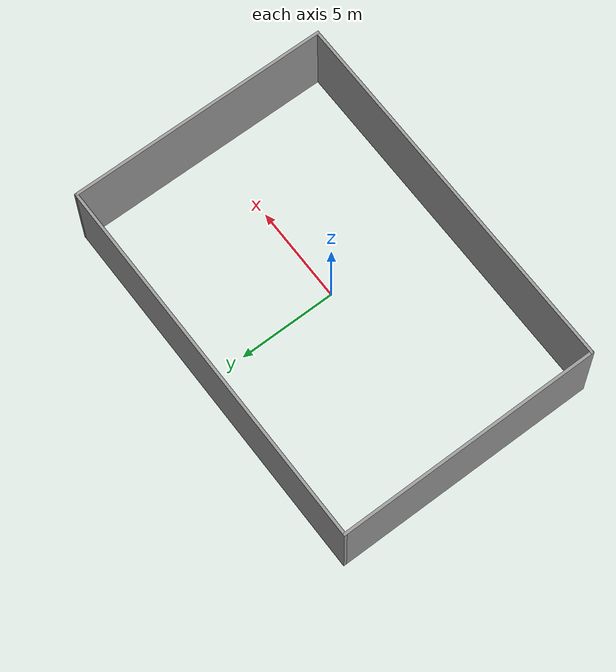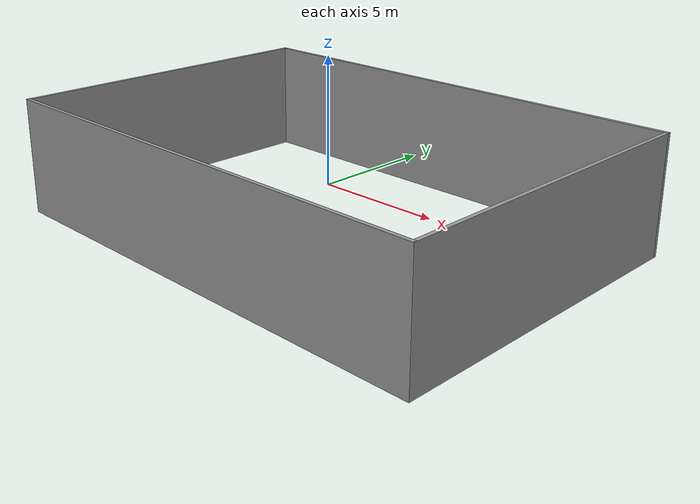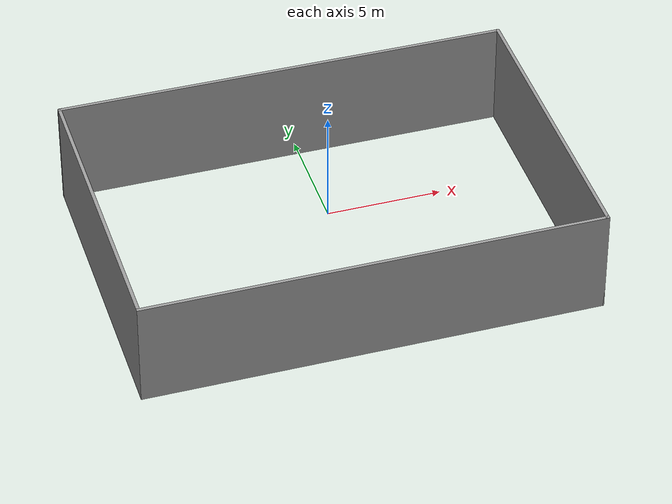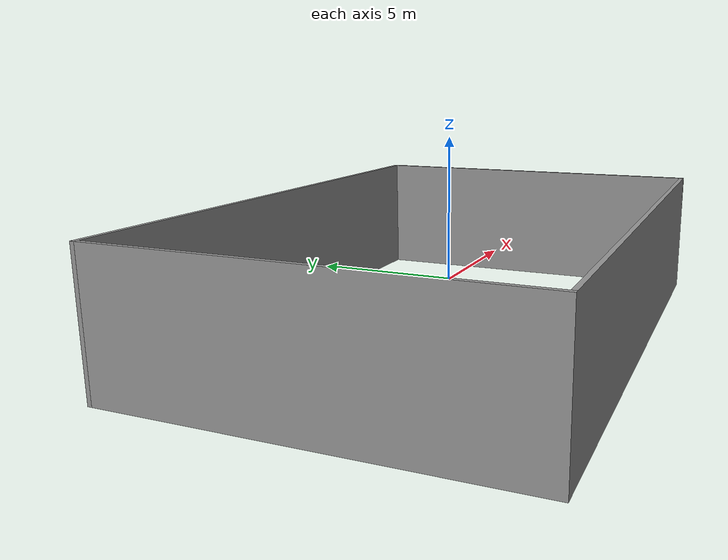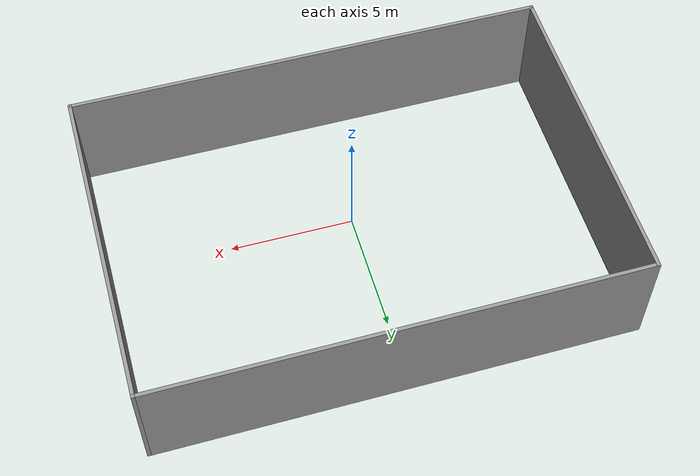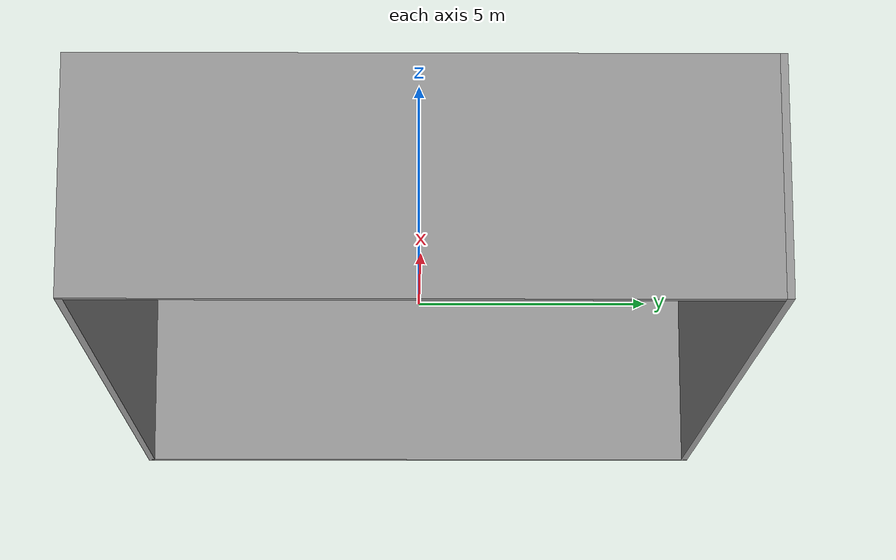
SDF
<?xml version='1.0'?>
<sdf version='1.7'>
  <model name='warehouse_outer_wall'>
    <pose>0.016054 0.050121 -0.875 0 -0 0</pose>
    <link name='Wall_0'>
      <collision name='Wall_0_Collision'>
        <geometry>
          <box>
            <size>13.75 0.15 4.75</size>
          </box>
        </geometry>
        <pose>0 0 1.25 0 -0 0</pose>
      </collision>
      <visual name='Wall_0_Visual'>
        <pose>0 0 1.25 0 -0 0</pose>
        <geometry>
          <box>
            <size>13.75 0.15 4.75</size>
          </box>
        </geometry>
        <material>
          <script>
            <uri>file://media/materials/scripts/gazebo.material</uri>
            <name>Gazebo/Grey</name>
          </script>
          <ambient>1 1 1 1</ambient>
        </material>
        <meta>
          <layer>0</layer>
        </meta>
      </visual>
      <pose>-9.925 -0.011258 0 0 -0 -1.5708</pose>
    </link>
    <link name='Wall_1'>
      <collision name='Wall_1_Collision'>
        <geometry>
          <box>
            <size>20 0.15 4.75</size>
          </box>
        </geometry>
        <pose>0 0 1.25 0 -0 0</pose>
      </collision>
      <visual name='Wall_1_Visual'>
        <pose>0 0 1.25 0 -0 0</pose>
        <geometry>
          <box>
            <size>20 0.15 4.75</size>
          </box>
        </geometry>
        <material>
          <script>
            <uri>file://media/materials/scripts/gazebo.material</uri>
            <name>Gazebo/Grey</name>
          </script>
          <ambient>1 1 1 1</ambient>
        </material>
        <meta>
          <layer>0</layer>
        </meta>
      </visual>
      <pose>-0 -6.81126 0 0 -0 0</pose>
    </link>

    <link name='Wall_2'>
      <collision name='Wall_2_Collision'>
        <geometry>
          <box>
            <size>13.75 0.15 4.75</size>
          </box>
        </geometry>
        <pose>0 0 1.25 0 -0 0</pose>
      </collision>
      <visual name='Wall_2_Visual'>
        <pose>0 0 1.25 0 -0 0</pose>
        <geometry>
          <box>
            <size>13.75 0.15 4.75</size>
          </box>
        </geometry>
        <material>
          <script>
            <uri>file://media/materials/scripts/gazebo.material</uri>
            <name>Gazebo/Grey</name>
          </script>
          <ambient>1 1 1 1</ambient>
        </material>
        <meta>
          <layer>0</layer>
        </meta>
      </visual>
      <pose>9.925 -0.011258 0 0 -0 1.5708</pose>
    </link>

    <link name='Wall_3'>
      <collision name='Wall_3_Collision'>
        <geometry>
          <box>
            <size>20 0.15 4.75</size>
          </box>
        </geometry>
        <pose>0 0 1.25 0 -0 0</pose>
      </collision>
      <visual name='Wall_3_Visual'>
        <pose>0 0 1.25 0 -0 0</pose>
        <geometry>
          <box>
            <size>20 0.15 4.75</size>
          </box>
        </geometry>
        <material>
          <script>
            <uri>file://media/materials/scripts/gazebo.material</uri>
            <name>Gazebo/Grey</name>
          </script>
          <ambient>1 1 1 1</ambient>
        </material>
        <meta>
          <layer>0</layer>
        </meta>
      </visual>
      <pose>-0 6.78874 0 0 -0 3.14159</pose>
    </link>

    <link name='Wall_4'>
      <collision name='Wall_4_Collision'>
        <geometry>
          <box>
            <size>13.75 0.15 4.75</size>
          </box>
        </geometry>
        <pose>0 0 1.25 0 -0 0</pose>
      </collision>
      <visual name='Wall_4_Visual'>
        <pose>0 0 1.25 0 -0 0</pose>
        <geometry>
          <box>
            <size>13.75 0.15 4.75</size>
          </box>
        </geometry>
        <material>
          <script>
            <uri>file://media/materials/scripts/gazebo.material</uri>
            <name>Gazebo/Grey</name>
          </script>
          <ambient>1 1 1 1</ambient>
        </material>
        <meta>
          <layer>0</layer>
        </meta>
      </visual>
      <pose>-9.925 -0.011258 0 0 -0 -1.5708</pose>
    </link>

    <link name='Wall_5'>
      <collision name='Wall_5_Collision'>
        <geometry>
          <box>
            <size>20 0.15 4.75</size>
          </box>
        </geometry>
        <pose>0 0 1.25 0 -0 0</pose>
      </collision>
      <visual name='Wall_5_Visual'>
        <pose>0 0 1.25 0 -0 0</pose>
        <geometry>
          <box>
            <size>20 0.15 4.75</size>
          </box>
        </geometry>
        <material>
          <script>
            <uri>file://media/materials/scripts/gazebo.material</uri>
            <name>Gazebo/Grey</name>
          </script>
          <ambient>1 1 1 1</ambient>
        </material>
        <meta>
          <layer>0</layer>
        </meta>
      </visual>
      <pose>-0 -6.81126 0 0 -0 0</pose>
    </link>

    <static>1</static>
  </model>
</sdf>
